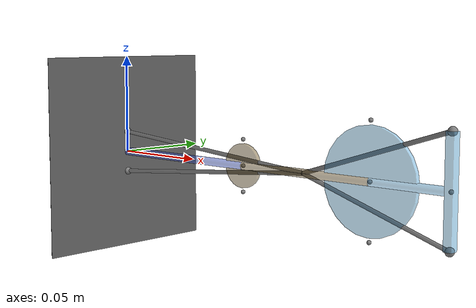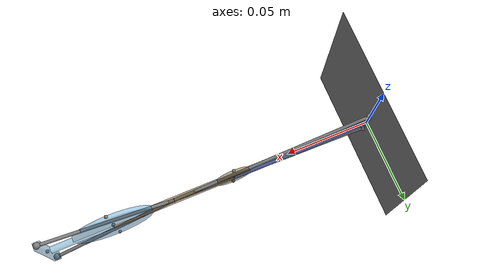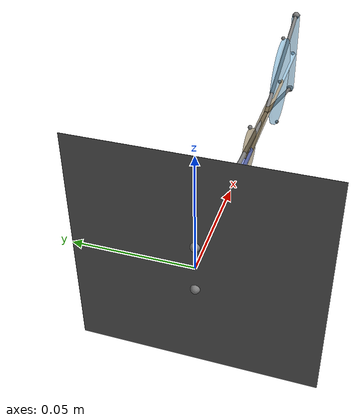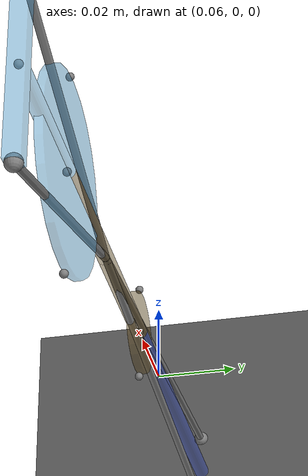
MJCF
<?xml version='1.0' encoding='UTF-8'?>
<mujoco model="2R_tendon_planar">

    <option timestep="1e-4"/>
    <option integrator="RK4"/>
    <option gravity="0 0 -9.8"/>

    <asset>
        <texture type="skybox" builtin="gradient" rgb1="1 1 1" rgb2="0.5 0.5 0.5" width="265" height="256"/>
        <texture name="grid" type="2d" builtin="checker" rgb1="0.1 0.1 0.1" rgb2="0.6 0.6 0.6" width="300" height="300"/>
        <material name="grid" texture="grid" texrepeat="10 10" reflectance="0.2"/>
    </asset>

    <worldbody>
        <light pos="0 0 10"/>

        <camera name="side view" pos="0.1 -1.5 1.0" euler="90 0 0" fovy="60"/>
        <camera name="upper view" pos="0 0 1.5" euler="0 0 0"/>

        <body name="wall" pos="0 0 0" euler="0 90 0">
            <geom type="plane" size="0.05 0.05 0.01" material="grid"/>
            <site name="t1_wall" pos="0.0105 0 0" type="sphere" size="0.002"/>
            <site name="t2_wall" pos="-0.0105 0 0" type="sphere" size="0.002"/>
        </body>

        <body name="mid_body_t1" pos="0.1205 0 0">
            <site name="t1_mid" pos="0 0 0" type="sphere" size="0.001"/>
            <joint name="mid_joint_x_t1" type="slide" axis="1 0 0"/>
            <joint name="mid_joint_y_t1" type="slide" axis="0 0 1"/>
            <geom type="sphere" size="0.002" mass="0.0001" rgba="0.86 0.43 0.54 0.5" contype="0"/>
        </body>

        <body name="mid_body_t2" pos="0.1205 0 0">
            <site name="t2_mid" pos="0 0 0" type="sphere" size="0.001"/>
            <joint name="mid_joint_x_t2" type="slide" axis="1 0 0"/>
            <joint name="mid_joint_y_t2" type="slide" axis="0 0 1"/>
            <geom type="sphere" size="0.002" mass="0.0001" rgba="0.86 0.43 0.54 0.5" contype="0"/>
        </body>

        <body name="effector_link" pos="0.196 0 0">
            <site name="effector_world" pos="0 0 0" type="sphere" size="0.001"/>
            <joint name="effector_x" type="slide" axis="1 0 0"/>
            <joint name="effector_y" type="slide" axis="0 0 1"/>
            <geom type="sphere" size="0.002" mass="0.0001" rgba="0.86 0.43 0.54 0.5" contype="0"/>
        </body>

        <body name="link1" pos="0 0 0" euler="0 0 0">
            <geom type="cylinder" pos="0.042 0 0" size="0.002 0.042" euler="0 90 0" rgba="0.21 0.32 0.82 0.5" contype="0"/>

            <body name="link2" pos="0.084 0 0" euler="0 0 0">
                <joint name="A" type="hinge" axis="0 1 0" range="-1.57 1.57"/>
                <geom type="cylinder" pos="0.0365 0 0" size="0.002 0.0365" euler="0 90 0" rgba="0.42 0.32 0.12 0.5" contype="0"/>

                <geom name="pulley1" type="cylinder" size="0.0105 0.001" pos="0 0 0" euler="90 0 0" rgba="0.42 0.32 0.12 0.5" contype="0"/>
                <site name="side_r1_t1" pos="0 0 -0.0125" type="sphere" size="0.001"/>
                <site name="side_r1_t2" pos="0 0 0.0125" type="sphere" size="0.001"/>
                <site name="pulley1_side" pos="0 0 0" type="sphere" size="0.001"/>

                <body name="link3" pos="0.073 0 0" euler="0 0 0">
                    <joint name="B" type="hinge" axis="0 1 0" range="-1.57 1.57"/>
                    <geom type="cylinder" pos="0.0195 0 0" size="0.002 0.0195" euler="0 90 0" rgba="0.34 0.65 0.84 0.5" contype="0"/>
                    <geom type="box" pos="0.039 0 0" size="0.002 0.002 0.024" rgba="0.34 0.65 0.84 0.5" mass="0" contype="0"/>

                    <site name="t1_end" pos="0.039 0 0.024" type="sphere" size="0.002"/>
                    <site name="t2_end" pos="0.039 0 -0.024" type="sphere" size="0.002"/>

                    <geom name="pulley2" type="cylinder" size="0.024 0.001" pos="0 0 0" euler="90 0 0" rgba="0.34 0.65 0.84 0.5" contype="0"/>
                    <site name="side_r2_t1" pos="0 0 0.026" type="sphere" size="0.001"/>
                    <site name="side_r2_t2" pos="0 0 -0.026" type="sphere" size="0.001"/>
                    <site name="pulley2_side" pos="0 0 0" type="sphere" size="0.001"/>

                    <site name="effector" pos="0.039 0 0" type="sphere" size="0.001"/>
                </body>
            </body>
        </body>
    </worldbody>

    <tendon>
        <spatial name="tendon1_1" width="0.001" stiffness="100" damping="10" springlength="0.005">
            <site site="t1_wall"/>
            <geom geom="pulley1" sidesite="side_r1_t1"/>
            <site site="t1_mid"/>
            <geom geom="pulley2" sidesite="side_r2_t1"/>
            <site site="t1_end"/>
        </spatial>
    </tendon>

    <tendon>
        <spatial name="tendon2_1" width="0.001" stiffness="100" damping="10" springlength="0.005">
            <site site="t2_wall"/>
            <geom geom="pulley1" sidesite="side_r1_t2"/>
            <site site="t2_mid"/>
            <geom geom="pulley2" sidesite="side_r2_t2"/>
            <site site="t2_end"/>
        </spatial>
    </tendon>

    <equality>
        <connect site1="t1_mid" site2="pulley1_side"/>
        <connect site1="t1_mid" site2="pulley2_side"/>
        <connect site1="t2_mid" site2="pulley1_side"/>
        <connect site1="t2_mid" site2="pulley2_side"/>
    </equality>

    <actuator>
        <motor name="motor_A" joint="A" ctrllimited="true" ctrlrange="-50 50"/>
        <motor name="motor_B" joint="B" ctrllimited="true" ctrlrange="-50 50"/>
    </actuator>

    <sensor>
        <jointpos name="q1_pos" joint="A"/>
        <jointvel name="q1_vel" joint="A"/>
        <jointpos name="q2_pos" joint="B"/>
        <jointvel name="q2_vel" joint="B"/>
    </sensor>

</mujoco>
